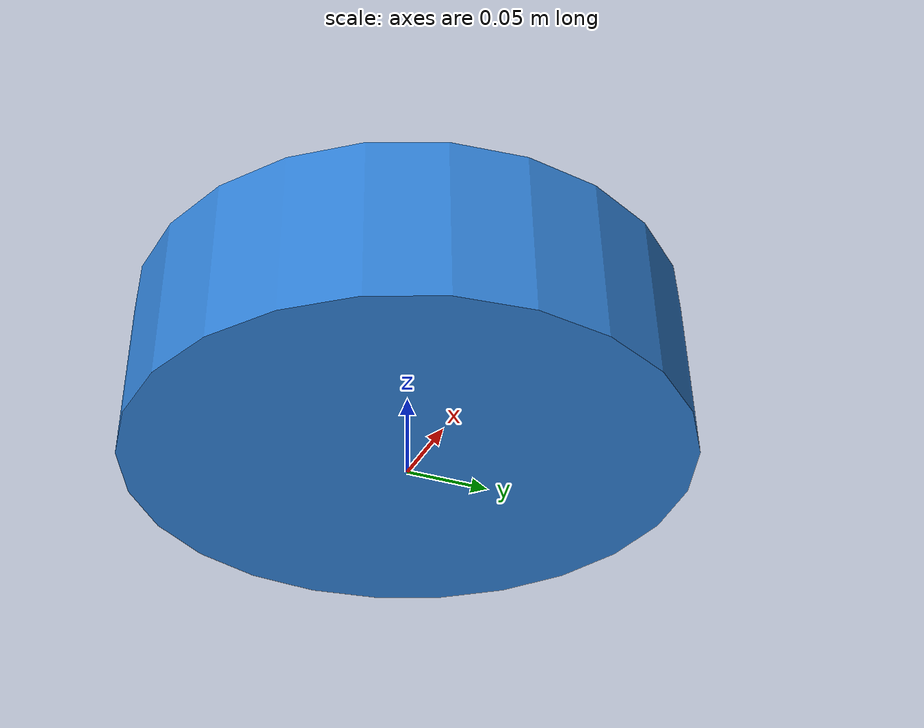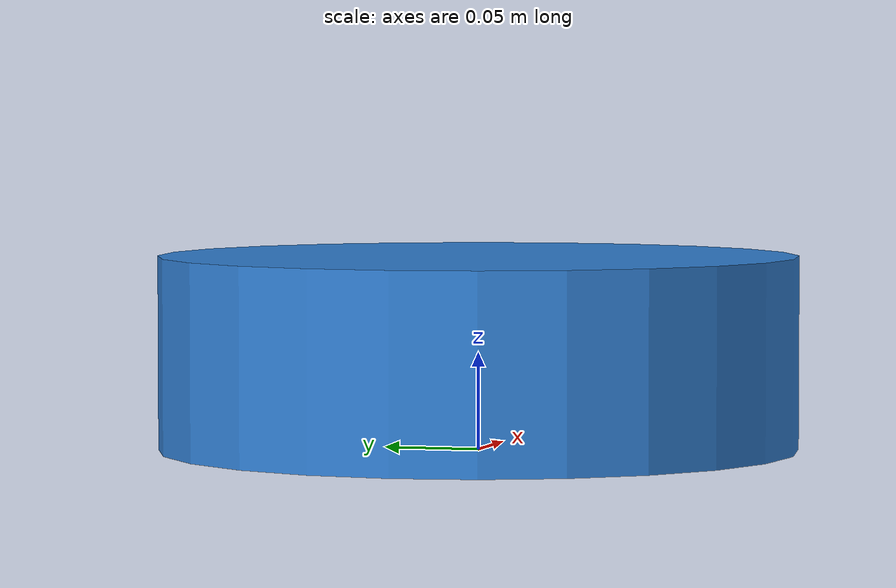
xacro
<?xml version="1.0"?>

<robot xmlns:xacro="http://www.ros.org/wiki/xacro" name="robot" >

  <xacro:property name="base_radius" value="0.165" />
  <xacro:property name="base_height" value="0.100" />

  <link name="base_footprint" />

  <joint name="base_footprint_joint" type="fixed">
    <parent link="base_footprint" />
    <child link="base_link" />
    <origin xyz="0 0 0" rpy="0 0 0" />
  </joint>

  <link name="base_link">
    <visual>
			<origin xyz="0 0 ${base_height/2}" rpy="0 0 0" />
      <geometry>
        <cylinder radius="${base_radius}" length="${base_height}" />
      </geometry>
			<material name="lightblue"><color rgba="0.1921 0.5058 0.839 1"/></material>
    </visual>

  </link>

</robot>
